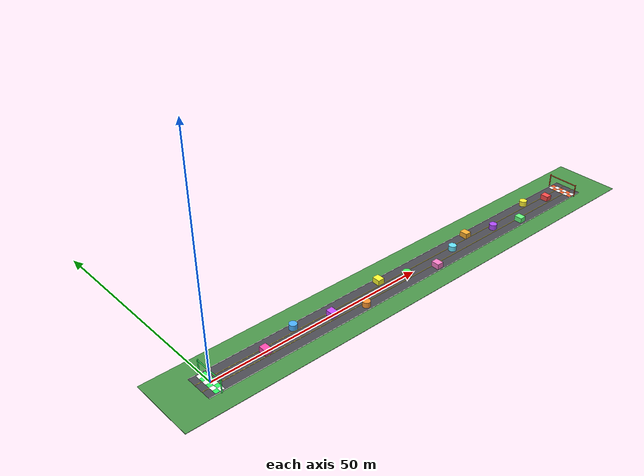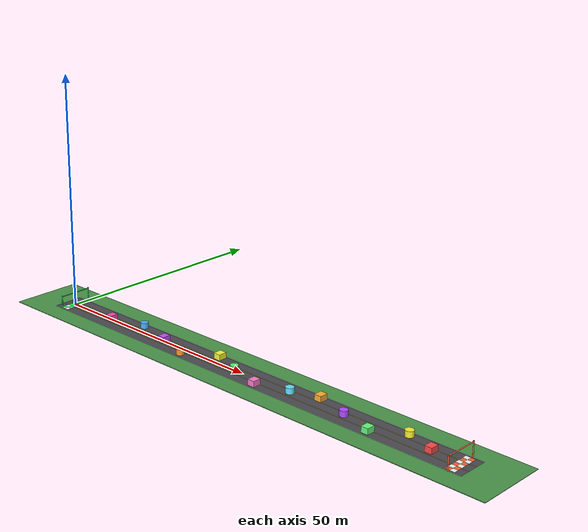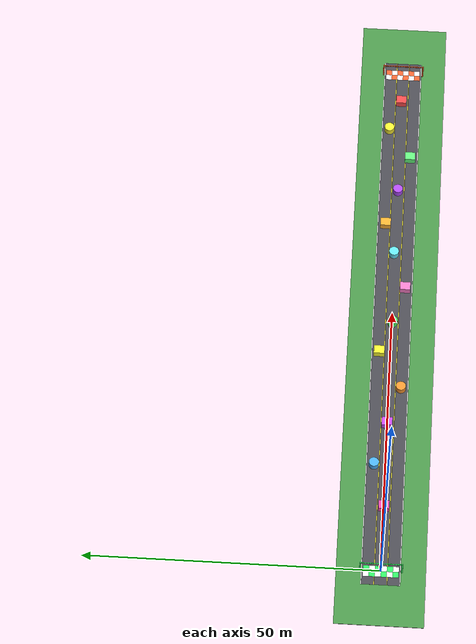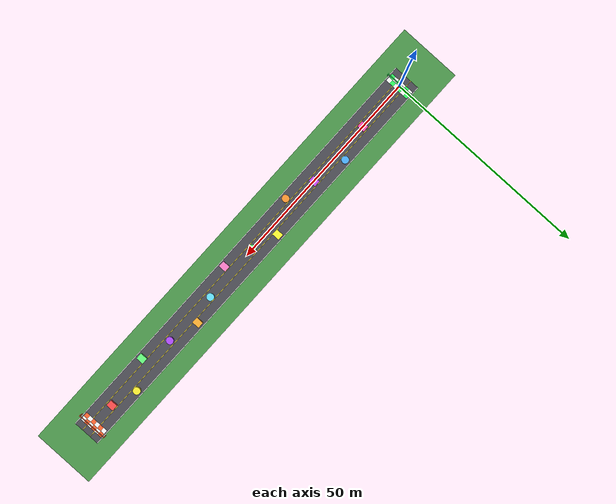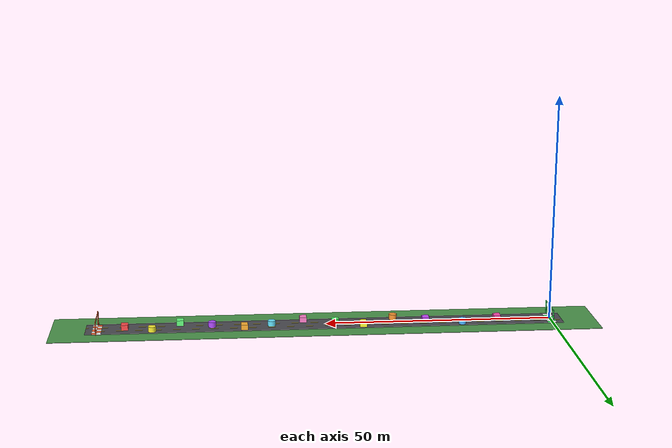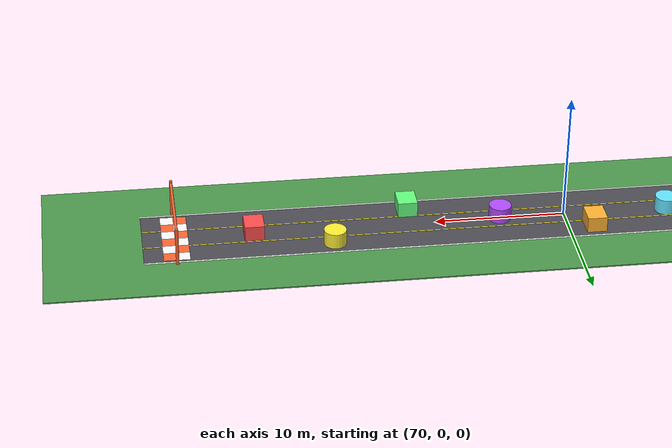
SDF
<?xml version="1.0" ?>
<sdf version="1.8">
  <world name="straight_road_world">

    <!-- ============== PLUGINS HỆ THỐNG ============== -->
    <plugin filename="gz-sim-physics-system" name="gz::sim::systems::Physics"/>
    <plugin filename="gz-sim-user-commands-system" name="gz::sim::systems::UserCommands"/>
    <plugin filename="gz-sim-scene-broadcaster-system" name="gz::sim::systems::SceneBroadcaster"/>
    <plugin filename="gz-sim-sensors-system" name="gz::sim::systems::Sensors">
      <render_engine>ogre2</render_engine>
    </plugin>

    <!-- ============== VẬT LÝ ============== -->
    <physics name="default_physics" type="ode">
      <max_step_size>0.001</max_step_size>
      <real_time_factor>1.0</real_time_factor>
      <real_time_update_rate>1000</real_time_update_rate>
    </physics>

    <!-- ============== ÁNH SÁNG ============== -->
    <light type="directional" name="sun">
      <cast_shadows>true</cast_shadows>
      <pose>0 0 50 0 0 0</pose>
      <diffuse>0.9 0.9 0.9 1</diffuse>
      <specular>0.3 0.3 0.3 1</specular>
      <direction>-0.5 0.3 -1</direction>
    </light>

    <light type="directional" name="sun2">
      <cast_shadows>false</cast_shadows>
      <pose>50 0 30 0 0 0</pose>
      <diffuse>0.5 0.5 0.5 1</diffuse>
      <specular>0.1 0.1 0.1 1</specular>
      <direction>0.3 -0.5 -1</direction>
    </light>

    <!-- ============== MẶT ĐẤT NỀN ============== -->
    <model name="ground_plane">
      <static>true</static>
      <pose>50 0 -0.05 0 0 0</pose>
      <link name="ground_link">
        <collision name="ground_collision">
          <geometry>
            <box>
              <size>120 15 0.1</size>
            </box>
          </geometry>
          <surface>
            <friction>
              <ode>
                <mu>1.0</mu>
                <mu2>1.0</mu2>
              </ode>
            </friction>
          </surface>
        </collision>
        <visual name="ground_visual">
          <geometry>
            <box>
              <size>120 15 0.1</size>
            </box>
          </geometry>
          <material>
            <ambient>0.2 0.5 0.2 1</ambient>
            <diffuse>0.3 0.6 0.3 1</diffuse>
          </material>
        </visual>
      </link>
    </model>

    <!-- ============== MẶT ĐƯỜNG CHÍNH (3 làn x 2m = 6m) ============== -->
    <model name="road_surface">
      <static>true</static>
      <pose>50 0 0.001 0 0 0</pose>
      <link name="road_link">
        <visual name="road_visual">
          <geometry>
            <box>
              <size>105 6.5 0.002</size>
            </box>
          </geometry>
          <material>
            <ambient>0.25 0.25 0.28 1</ambient>
            <diffuse>0.3 0.3 0.33 1</diffuse>
          </material>
        </visual>
      </link>
    </model>

    <!-- ============== VẠCH KẺ ĐƯỜNG ============== -->

    <!-- Vạch trắng bên trái đường (y = +3.25m) -->
    <model name="line_left_edge">
      <static>true</static>
      <pose>50 3.25 0.003 0 0 0</pose>
      <link name="link">
        <visual name="visual">
          <geometry>
            <box><size>105 0.15 0.002</size></box>
          </geometry>
          <material>
            <ambient>0.9 0.9 0.9 1</ambient>
            <diffuse>1.0 1.0 1.0 1</diffuse>
          </material>
        </visual>
      </link>
    </model>

    <!-- Vạch trắng bên phải đường (y = -3.25m) -->
    <model name="line_right_edge">
      <static>true</static>
      <pose>50 -3.25 0.003 0 0 0</pose>
      <link name="link">
        <visual name="visual">
          <geometry>
            <box><size>105 0.15 0.002</size></box>
          </geometry>
          <material>
            <ambient>0.9 0.9 0.9 1</ambient>
            <diffuse>1.0 1.0 1.0 1</diffuse>
          </material>
        </visual>
      </link>
    </model>

    <!-- Vạch vàng phân làn 1-2 (y = +1.1m) - liền nét -->
    <model name="line_lane_12">
      <static>true</static>
      <pose>50 1.1 0.003 0 0 0</pose>
      <link name="link">
        <visual name="visual">
          <geometry><box><size>105 0.12 0.002</size></box></geometry>
          <material>
            <ambient>0.9 0.8 0.1 1</ambient>
            <diffuse>1.0 0.9 0.2 1</diffuse>
          </material>
        </visual>
      </link>
    </model>

    <!-- Vạch vàng phân làn 2-3 (y = -1.1m) - liền nét -->
    <model name="line_lane_23">
      <static>true</static>
      <pose>50 -1.1 0.003 0 0 0</pose>
      <link name="link">
        <visual name="visual">
          <geometry><box><size>105 0.12 0.002</size></box></geometry>
          <material>
            <ambient>0.9 0.8 0.1 1</ambient>
            <diffuse>1.0 0.9 0.2 1</diffuse>
          </material>
        </visual>
      </link>
    </model>

    <!-- ============== MARKER START (xanh lá neon) ============== -->
    <!-- Vạch kẻ ô caro START -->
    <model name="start_checker_1">
      <static>true</static>
      <pose>-0.5 2.5 0.004 0 0 0</pose>
      <link name="link">
        <visual name="visual">
          <geometry><box><size>1 1 0.002</size></box></geometry>
          <material><ambient>1 1 1 1</ambient><diffuse>1 1 1 1</diffuse></material>
        </visual>
      </link>
    </model>
    <model name="start_checker_2">
      <static>true</static>
      <pose>0.5 2.5 0.004 0 0 0</pose>
      <link name="link">
        <visual name="visual">
          <geometry><box><size>1 1 0.002</size></box></geometry>
          <material><ambient>0.1 0.9 0.3 1</ambient><diffuse>0.2 1 0.4 1</diffuse></material>
        </visual>
      </link>
    </model>
    <model name="start_checker_3">
      <static>true</static>
      <pose>-0.5 1.5 0.004 0 0 0</pose>
      <link name="link">
        <visual name="visual">
          <geometry><box><size>1 1 0.002</size></box></geometry>
          <material><ambient>0.1 0.9 0.3 1</ambient><diffuse>0.2 1 0.4 1</diffuse></material>
        </visual>
      </link>
    </model>
    <model name="start_checker_4">
      <static>true</static>
      <pose>0.5 1.5 0.004 0 0 0</pose>
      <link name="link">
        <visual name="visual">
          <geometry><box><size>1 1 0.002</size></box></geometry>
          <material><ambient>1 1 1 1</ambient><diffuse>1 1 1 1</diffuse></material>
        </visual>
      </link>
    </model>
    <model name="start_checker_5">
      <static>true</static>
      <pose>-0.5 0.5 0.004 0 0 0</pose>
      <link name="link">
        <visual name="visual">
          <geometry><box><size>1 1 0.002</size></box></geometry>
          <material><ambient>1 1 1 1</ambient><diffuse>1 1 1 1</diffuse></material>
        </visual>
      </link>
    </model>
    <model name="start_checker_6">
      <static>true</static>
      <pose>0.5 0.5 0.004 0 0 0</pose>
      <link name="link">
        <visual name="visual">
          <geometry><box><size>1 1 0.002</size></box></geometry>
          <material><ambient>0.1 0.9 0.3 1</ambient><diffuse>0.2 1 0.4 1</diffuse></material>
        </visual>
      </link>
    </model>
    <model name="start_checker_7">
      <static>true</static>
      <pose>-0.5 -0.5 0.004 0 0 0</pose>
      <link name="link">
        <visual name="visual">
          <geometry><box><size>1 1 0.002</size></box></geometry>
          <material><ambient>0.1 0.9 0.3 1</ambient><diffuse>0.2 1 0.4 1</diffuse></material>
        </visual>
      </link>
    </model>
    <model name="start_checker_8">
      <static>true</static>
      <pose>0.5 -0.5 0.004 0 0 0</pose>
      <link name="link">
        <visual name="visual">
          <geometry><box><size>1 1 0.002</size></box></geometry>
          <material><ambient>1 1 1 1</ambient><diffuse>1 1 1 1</diffuse></material>
        </visual>
      </link>
    </model>
    <model name="start_checker_9">
      <static>true</static>
      <pose>-0.5 -1.5 0.004 0 0 0</pose>
      <link name="link">
        <visual name="visual">
          <geometry><box><size>1 1 0.002</size></box></geometry>
          <material><ambient>1 1 1 1</ambient><diffuse>1 1 1 1</diffuse></material>
        </visual>
      </link>
    </model>
    <model name="start_checker_10">
      <static>true</static>
      <pose>0.5 -1.5 0.004 0 0 0</pose>
      <link name="link">
        <visual name="visual">
          <geometry><box><size>1 1 0.002</size></box></geometry>
          <material><ambient>0.1 0.9 0.3 1</ambient><diffuse>0.2 1 0.4 1</diffuse></material>
        </visual>
      </link>
    </model>
    <model name="start_checker_11">
      <static>true</static>
      <pose>-0.5 -2.5 0.004 0 0 0</pose>
      <link name="link">
        <visual name="visual">
          <geometry><box><size>1 1 0.002</size></box></geometry>
          <material><ambient>0.1 0.9 0.3 1</ambient><diffuse>0.2 1 0.4 1</diffuse></material>
        </visual>
      </link>
    </model>
    <model name="start_checker_12">
      <static>true</static>
      <pose>0.5 -2.5 0.004 0 0 0</pose>
      <link name="link">
        <visual name="visual">
          <geometry><box><size>1 1 0.002</size></box></geometry>
          <material><ambient>1 1 1 1</ambient><diffuse>1 1 1 1</diffuse></material>
        </visual>
      </link>
    </model>

    <!-- Cổng START (2 cột + thanh ngang) -->
    <model name="start_pole_left">
      <static>true</static>
      <pose>0 3.5 1.5 0 0 0</pose>
      <link name="link">
        <visual name="visual">
          <geometry><cylinder><radius>0.12</radius><length>3</length></cylinder></geometry>
          <material><ambient>0.1 0.9 0.3 1</ambient><diffuse>0.2 1 0.4 1</diffuse></material>
        </visual>
      </link>
    </model>
    <model name="start_pole_right">
      <static>true</static>
      <pose>0 -3.5 1.5 0 0 0</pose>
      <link name="link">
        <visual name="visual">
          <geometry><cylinder><radius>0.12</radius><length>3</length></cylinder></geometry>
          <material><ambient>0.1 0.9 0.3 1</ambient><diffuse>0.2 1 0.4 1</diffuse></material>
        </visual>
      </link>
    </model>
    <model name="start_arch">
      <static>true</static>
      <pose>0 0 2.8 1.5708 0 0</pose>
      <link name="link">
        <visual name="visual">
          <geometry><cylinder><radius>0.1</radius><length>7</length></cylinder></geometry>
          <material><ambient>0.1 0.9 0.3 1</ambient><diffuse>0.2 1 0.4 1</diffuse></material>
        </visual>
      </link>
    </model>

    <!-- ============== MARKER GOAL (đỏ/cam neon) ============== -->
    <!-- Vạch kẻ ô caro FINISH -->
    <model name="goal_checker_1">
      <static>true</static>
      <pose>99.5 2.5 0.004 0 0 0</pose>
      <link name="link">
        <visual name="visual">
          <geometry><box><size>1 1 0.002</size></box></geometry>
          <material><ambient>1 1 1 1</ambient><diffuse>1 1 1 1</diffuse></material>
        </visual>
      </link>
    </model>
    <model name="goal_checker_2">
      <static>true</static>
      <pose>100.5 2.5 0.004 0 0 0</pose>
      <link name="link">
        <visual name="visual">
          <geometry><box><size>1 1 0.002</size></box></geometry>
          <material><ambient>1 0.3 0.1 1</ambient><diffuse>1 0.4 0.2 1</diffuse></material>
        </visual>
      </link>
    </model>
    <model name="goal_checker_3">
      <static>true</static>
      <pose>99.5 1.5 0.004 0 0 0</pose>
      <link name="link">
        <visual name="visual">
          <geometry><box><size>1 1 0.002</size></box></geometry>
          <material><ambient>1 0.3 0.1 1</ambient><diffuse>1 0.4 0.2 1</diffuse></material>
        </visual>
      </link>
    </model>
    <model name="goal_checker_4">
      <static>true</static>
      <pose>100.5 1.5 0.004 0 0 0</pose>
      <link name="link">
        <visual name="visual">
          <geometry><box><size>1 1 0.002</size></box></geometry>
          <material><ambient>1 1 1 1</ambient><diffuse>1 1 1 1</diffuse></material>
        </visual>
      </link>
    </model>
    <model name="goal_checker_5">
      <static>true</static>
      <pose>99.5 0.5 0.004 0 0 0</pose>
      <link name="link">
        <visual name="visual">
          <geometry><box><size>1 1 0.002</size></box></geometry>
          <material><ambient>1 1 1 1</ambient><diffuse>1 1 1 1</diffuse></material>
        </visual>
      </link>
    </model>
    <model name="goal_checker_6">
      <static>true</static>
      <pose>100.5 0.5 0.004 0 0 0</pose>
      <link name="link">
        <visual name="visual">
          <geometry><box><size>1 1 0.002</size></box></geometry>
          <material><ambient>1 0.3 0.1 1</ambient><diffuse>1 0.4 0.2 1</diffuse></material>
        </visual>
      </link>
    </model>
    <model name="goal_checker_7">
      <static>true</static>
      <pose>99.5 -0.5 0.004 0 0 0</pose>
      <link name="link">
        <visual name="visual">
          <geometry><box><size>1 1 0.002</size></box></geometry>
          <material><ambient>1 0.3 0.1 1</ambient><diffuse>1 0.4 0.2 1</diffuse></material>
        </visual>
      </link>
    </model>
    <model name="goal_checker_8">
      <static>true</static>
      <pose>100.5 -0.5 0.004 0 0 0</pose>
      <link name="link">
        <visual name="visual">
          <geometry><box><size>1 1 0.002</size></box></geometry>
          <material><ambient>1 1 1 1</ambient><diffuse>1 1 1 1</diffuse></material>
        </visual>
      </link>
    </model>
    <model name="goal_checker_9">
      <static>true</static>
      <pose>99.5 -1.5 0.004 0 0 0</pose>
      <link name="link">
        <visual name="visual">
          <geometry><box><size>1 1 0.002</size></box></geometry>
          <material><ambient>1 1 1 1</ambient><diffuse>1 1 1 1</diffuse></material>
        </visual>
      </link>
    </model>
    <model name="goal_checker_10">
      <static>true</static>
      <pose>100.5 -1.5 0.004 0 0 0</pose>
      <link name="link">
        <visual name="visual">
          <geometry><box><size>1 1 0.002</size></box></geometry>
          <material><ambient>1 0.3 0.1 1</ambient><diffuse>1 0.4 0.2 1</diffuse></material>
        </visual>
      </link>
    </model>
    <model name="goal_checker_11">
      <static>true</static>
      <pose>99.5 -2.5 0.004 0 0 0</pose>
      <link name="link">
        <visual name="visual">
          <geometry><box><size>1 1 0.002</size></box></geometry>
          <material><ambient>1 0.3 0.1 1</ambient><diffuse>1 0.4 0.2 1</diffuse></material>
        </visual>
      </link>
    </model>
    <model name="goal_checker_12">
      <static>true</static>
      <pose>100.5 -2.5 0.004 0 0 0</pose>
      <link name="link">
        <visual name="visual">
          <geometry><box><size>1 1 0.002</size></box></geometry>
          <material><ambient>1 1 1 1</ambient><diffuse>1 1 1 1</diffuse></material>
        </visual>
      </link>
    </model>

    <!-- Cổng FINISH (2 cột + thanh ngang) -->
    <model name="goal_pole_left">
      <static>true</static>
      <pose>100 3.5 1.5 0 0 0</pose>
      <link name="link">
        <visual name="visual">
          <geometry><cylinder><radius>0.12</radius><length>3</length></cylinder></geometry>
          <material><ambient>1 0.3 0.1 1</ambient><diffuse>1 0.4 0.2 1</diffuse></material>
        </visual>
      </link>
    </model>
    <model name="goal_pole_right">
      <static>true</static>
      <pose>100 -3.5 1.5 0 0 0</pose>
      <link name="link">
        <visual name="visual">
          <geometry><cylinder><radius>0.12</radius><length>3</length></cylinder></geometry>
          <material><ambient>1 0.3 0.1 1</ambient><diffuse>1 0.4 0.2 1</diffuse></material>
        </visual>
      </link>
    </model>
    <model name="goal_arch">
      <static>true</static>
      <pose>100 0 2.8 1.5708 0 0</pose>
      <link name="link">
        <visual name="visual">
          <geometry><cylinder><radius>0.1</radius><length>7</length></cylinder></geometry>
          <material><ambient>1 0.3 0.1 1</ambient><diffuse>1 0.4 0.2 1</diffuse></material>
        </visual>
      </link>
    </model>

    <!-- ============== VẬT CẢN RẢI RÁC TRÊN 3 LÀN ============== -->
    <!-- Làn 1: y ≈ +2.0 | Làn 2: y ≈ 0.0 | Làn 3: y ≈ -2.0 -->
    <!-- MÀU SẮC: Hồng, Tím, Xanh dương, Xanh lá, Cam, Vàng -->

    <!-- Vật cản 1: Làn 2 (giữa) - x=12 - HỘP HỒNG NEON -->
    <model name="obstacle_01">
      <static>true</static>
      <pose>12 0 0.6 0 0 0</pose>
      <link name="link">
        <collision name="collision">
          <geometry><box><size>1.5 1.8 1.2</size></box></geometry>
        </collision>
        <visual name="visual">
          <geometry><box><size>1.5 1.8 1.2</size></box></geometry>
          <material><ambient>1 0.2 0.6 1</ambient><diffuse>1 0.3 0.7 1</diffuse></material>
        </visual>
      </link>
    </model>

    <!-- Vật cản 2: Làn 1 (trái) - x=20 - TRỤ XANH DƯƠNG -->
    <model name="obstacle_02">
      <static>true</static>
      <pose>20 2.0 0.6 0 0 0</pose>
      <link name="link">
        <collision name="collision">
          <geometry><cylinder><radius>0.85</radius><length>1.2</length></cylinder></geometry>
        </collision>
        <visual name="visual">
          <geometry><cylinder><radius>0.85</radius><length>1.2</length></cylinder></geometry>
          <material><ambient>0.2 0.6 1 1</ambient><diffuse>0.3 0.7 1 1</diffuse></material>
        </visual>
      </link>
    </model>

    <!-- Vật cản 3: Làn 2 (giữa) - x=28 - HỘP TÍM -->
    <model name="obstacle_03">
      <static>true</static>
      <pose>28 0.1 0.6 0 0 0</pose>
      <link name="link">
        <collision name="collision">
          <geometry><box><size>1.5 1.8 1.2</size></box></geometry>
        </collision>
        <visual name="visual">
          <geometry><box><size>1.5 1.8 1.2</size></box></geometry>
          <material><ambient>0.7 0.2 0.9 1</ambient><diffuse>0.8 0.3 1 1</diffuse></material>
        </visual>
      </link>
    </model>

    <!-- Vật cản 4: Làn 3 (phải) - x=35 - TRỤ CAM -->
    <model name="obstacle_04">
      <static>true</static>
      <pose>35 -2.0 0.6 0 0 0</pose>
      <link name="link">
        <collision name="collision">
          <geometry><cylinder><radius>0.85</radius><length>1.2</length></cylinder></geometry>
        </collision>
        <visual name="visual">
          <geometry><cylinder><radius>0.85</radius><length>1.2</length></cylinder></geometry>
          <material><ambient>1 0.5 0.1 1</ambient><diffuse>1 0.6 0.2 1</diffuse></material>
        </visual>
      </link>
    </model>

    <!-- Vật cản 5: Làn 1 (trái) - x=42 - HỘP VÀNG NEON -->
    <model name="obstacle_05">
      <static>true</static>
      <pose>42 2.0 0.6 0 0 0</pose>
      <link name="link">
        <collision name="collision">
          <geometry><box><size>1.5 1.8 1.2</size></box></geometry>
        </collision>
        <visual name="visual">
          <geometry><box><size>1.5 1.8 1.2</size></box></geometry>
          <material><ambient>1 0.9 0.1 1</ambient><diffuse>1 1 0.2 1</diffuse></material>
        </visual>
      </link>
    </model>

    <!-- Vật cản 6: Làn 2 (giữa) - x=48 - TRỤ XANH LÁ -->
    <model name="obstacle_06">
      <static>true</static>
      <pose>48 -0.1 0.6 0 0 0</pose>
      <link name="link">
        <collision name="collision">
          <geometry><cylinder><radius>0.85</radius><length>1.2</length></cylinder></geometry>
        </collision>
        <visual name="visual">
          <geometry><cylinder><radius>0.85</radius><length>1.2</length></cylinder></geometry>
          <material><ambient>0.2 0.9 0.3 1</ambient><diffuse>0.3 1 0.4 1</diffuse></material>
        </visual>
      </link>
    </model>

    <!-- Vật cản 7: Làn 3 (phải) - x=55 - HỘP HỒNG -->
    <model name="obstacle_07">
      <static>true</static>
      <pose>55 -2.0 0.6 0 0 0</pose>
      <link name="link">
        <collision name="collision">
          <geometry><box><size>1.5 1.8 1.2</size></box></geometry>
        </collision>
        <visual name="visual">
          <geometry><box><size>1.5 1.8 1.2</size></box></geometry>
          <material><ambient>1 0.4 0.7 1</ambient><diffuse>1 0.5 0.8 1</diffuse></material>
        </visual>
      </link>
    </model>

    <!-- Vật cản 8: Làn 2 (giữa) - x=62 - TRỤ XANH DƯƠNG SÁNG -->
    <model name="obstacle_08">
      <static>true</static>
      <pose>62 0.2 0.6 0 0 0</pose>
      <link name="link">
        <collision name="collision">
          <geometry><cylinder><radius>0.85</radius><length>1.2</length></cylinder></geometry>
        </collision>
        <visual name="visual">
          <geometry><cylinder><radius>0.85</radius><length>1.2</length></cylinder></geometry>
          <material><ambient>0.3 0.8 1 1</ambient><diffuse>0.4 0.9 1 1</diffuse></material>
        </visual>
      </link>
    </model>

    <!-- Vật cản 9: Làn 1 (trái) - x=68 - HỘP CAM NEON -->
    <model name="obstacle_09">
      <static>true</static>
      <pose>68 1.9 0.6 0 0 0</pose>
      <link name="link">
        <collision name="collision">
          <geometry><box><size>1.5 1.8 1.2</size></box></geometry>
        </collision>
        <visual name="visual">
          <geometry><box><size>1.5 1.8 1.2</size></box></geometry>
          <material><ambient>1 0.6 0.1 1</ambient><diffuse>1 0.7 0.2 1</diffuse></material>
        </visual>
      </link>
    </model>

    <!-- Vật cản 10: Làn 2 (giữa) - x=75 - TRỤ TÍM -->
    <model name="obstacle_10">
      <static>true</static>
      <pose>75 0 0.6 0 0 0</pose>
      <link name="link">
        <collision name="collision">
          <geometry><cylinder><radius>0.85</radius><length>1.2</length></cylinder></geometry>
        </collision>
        <visual name="visual">
          <geometry><cylinder><radius>0.85</radius><length>1.2</length></cylinder></geometry>
          <material><ambient>0.6 0.2 0.9 1</ambient><diffuse>0.7 0.3 1 1</diffuse></material>
        </visual>
      </link>
    </model>

    <!-- Vật cản 11: Làn 3 (phải) - x=82 - HỘP XANH LÁ NEON -->
    <model name="obstacle_11">
      <static>true</static>
      <pose>82 -1.9 0.6 0 0 0</pose>
      <link name="link">
        <collision name="collision">
          <geometry><box><size>1.5 1.8 1.2</size></box></geometry>
        </collision>
        <visual name="visual">
          <geometry><box><size>1.5 1.8 1.2</size></box></geometry>
          <material><ambient>0.3 1 0.4 1</ambient><diffuse>0.4 1 0.5 1</diffuse></material>
        </visual>
      </link>
    </model>

    <!-- Vật cản 12: Làn 1 (trái) - x=88 - TRỤ VÀNG -->
    <model name="obstacle_12">
      <static>true</static>
      <pose>88 2.0 0.6 0 0 0</pose>
      <link name="link">
        <collision name="collision">
          <geometry><cylinder><radius>0.85</radius><length>1.2</length></cylinder></geometry>
        </collision>
        <visual name="visual">
          <geometry><cylinder><radius>0.85</radius><length>1.2</length></cylinder></geometry>
          <material><ambient>1 0.85 0.1 1</ambient><diffuse>1 0.95 0.2 1</diffuse></material>
        </visual>
      </link>
    </model>

    <!-- Vật cản 13: Làn 2 (giữa) - x=94 - HỘP ĐỎ TƯƠI -->
    <model name="obstacle_13">
      <static>true</static>
      <pose>94 0.1 0.6 0 0 0</pose>
      <link name="link">
        <collision name="collision">
          <geometry><box><size>1.5 1.8 1.2</size></box></geometry>
        </collision>
        <visual name="visual">
          <geometry><box><size>1.5 1.8 1.2</size></box></geometry>
          <material><ambient>1 0.2 0.2 1</ambient><diffuse>1 0.3 0.3 1</diffuse></material>
        </visual>
      </link>
    </model>

  </world>
</sdf>
